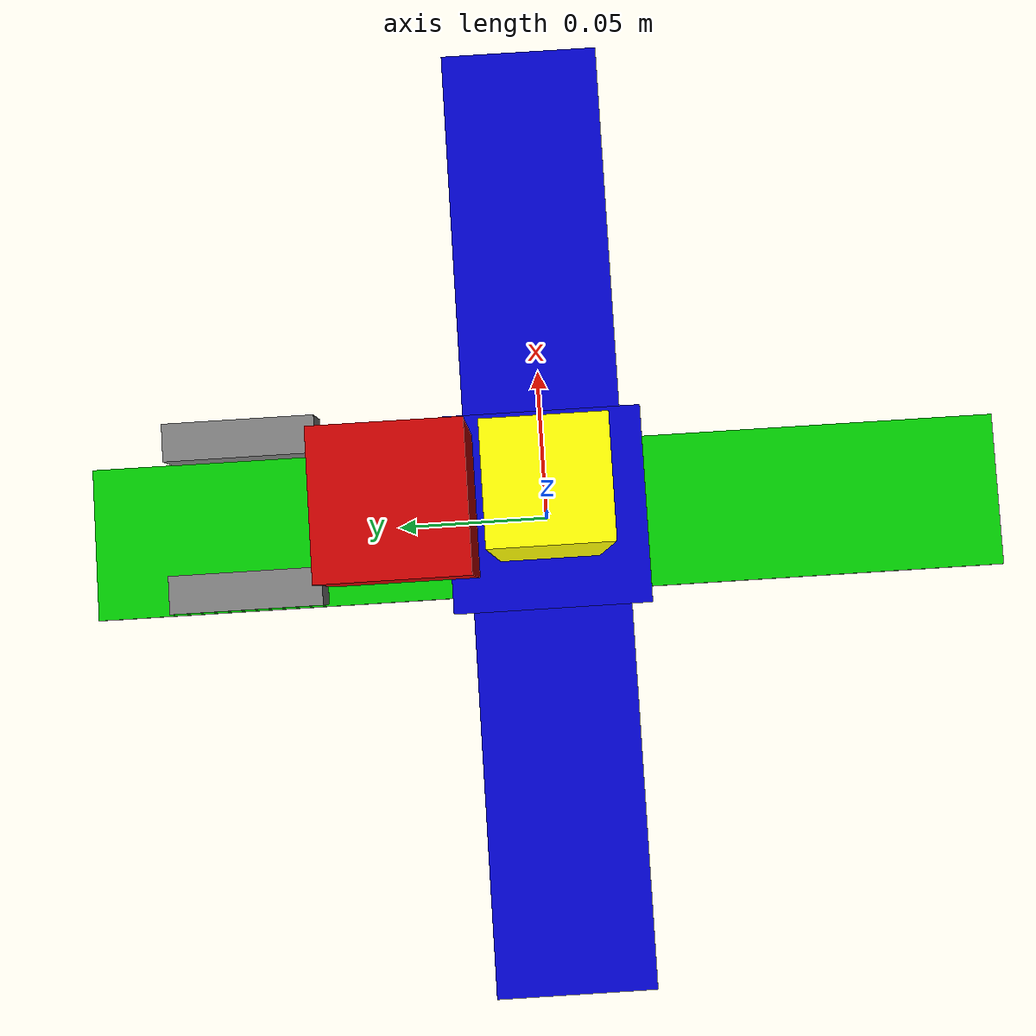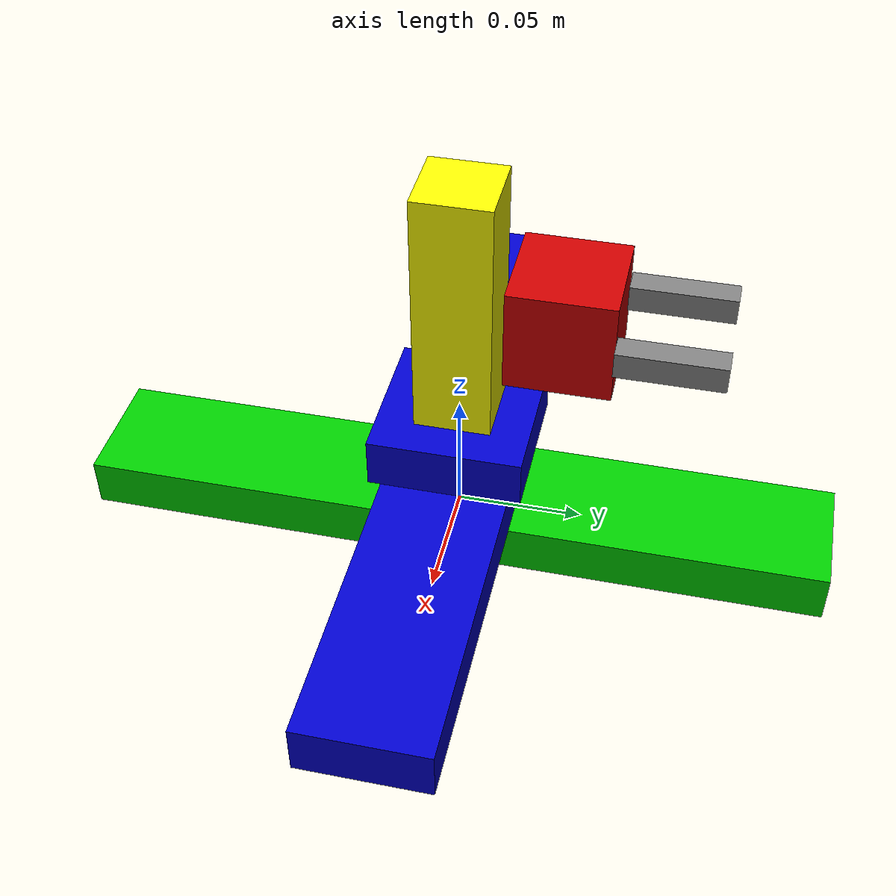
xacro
<?xml version="1.0"?>
<robot xmlns:xacro="http://www.ros.org/wiki/xacro" name="kim_kardashian">

  <material name="grey"><color rgba="0.5 0.5 0.5 1"/></material>
  <material name="blue"><color rgba="0 0 0.8 1"/></material>
  <material name="red"><color rgba="0.8 0 0 1"/></material>
  <material name="yellow"><color rgba="1 1 0 1"/></material>
  <material name="green"><color rgba="0 0.8 0 1"/></material>

  <link name="base_link">
    <visual>
      <geometry><box size="0.05 0.3 0.02"/></geometry>
      <material name="green"/>
    </visual>
  </link>

  <link name="x_rail_assembly">
    <visual>
      <geometry><box size="0.3 0.05 0.02"/></geometry>
      <material name="blue"/>
    </visual>
  </link>

  <joint name="y_axis_joint" type="prismatic">
    <parent link="base_link"/>
    <child link="x_rail_assembly"/>
    <origin xyz="0 0 0.02" rpy="0 0 0"/>
    <axis xyz="0 1 0"/>
    <limit lower="-0.12" upper="0.12" effort="100" velocity="1.0"/>
  </joint>

  <link name="x_slider">
    <visual>
      <geometry><box size="0.06 0.06 0.02"/></geometry>
      <material name="blue"/>
    </visual>
  </link>

  <joint name="x_axis_joint" type="prismatic">
    <parent link="x_rail_assembly"/>
    <child link="x_slider"/>
    <origin xyz="0 0 0.02" rpy="0 0 0"/>
    <axis xyz="1 0 0"/>
    <limit lower="-0.12" upper="0.12" effort="100" velocity="1.0"/>
  </joint>

  <link name="vertical_arm">
    <visual>
      <origin xyz="0 0 0.05" rpy="0 0 0"/>
      <geometry><box size="0.03 0.03 0.1"/></geometry>
      <material name="yellow"/>
    </visual>
  </link>

  <joint name="arm_to_x_joint" type="fixed">
    <parent link="x_slider"/>
    <child link="vertical_arm"/>
    <origin xyz="0 0 0.01" rpy="0 0 0"/>
  </joint>

  <link name="gripper_body">
    <visual>
      <geometry><box size="0.04 0.04 0.04"/></geometry>
      <material name="red"/>
    </visual>
  </link>

  <joint name="z_axis_lift_joint" type="prismatic">
    <parent link="vertical_arm"/>
    <child link="gripper_body"/>
    <origin xyz="0 0.04 0.05" rpy="0 0 0"/>
    <axis xyz="0 0 1"/>
    <limit lower="-0.04" upper="0.04" effort="100" velocity="1.0"/>
  </joint>

  <link name="finger_left">
    <visual>
      <geometry><box size="0.01 0.04 0.01"/></geometry>
      <material name="grey"/>
    </visual>
  </link>

  <joint name="finger_joint_left" type="prismatic">
    <parent link="gripper_body"/>
    <child link="finger_left"/>
    <origin xyz="-0.02 0.04 0" rpy="0 0 0"/>
    <axis xyz="1 0 0"/>
    <limit lower="-0.01" upper="0.01" effort="10" velocity="1.0"/>
  </joint>

  <link name="finger_right">
    <visual>
      <geometry><box size="0.01 0.04 0.01"/></geometry>
      <material name="grey"/>
    </visual>
  </link>

  <joint name="finger_joint_right" type="prismatic">
    <parent link="gripper_body"/>
    <child link="finger_right"/>
    <origin xyz="0.02 0.04 0" rpy="0 0 0"/>
    <axis xyz="1 0 0"/>
    <limit lower="-0.01" upper="0.01" effort="10" velocity="1.0"/>
    <mimic joint="finger_joint_left" multiplier="-1.0"/>
  </joint>

</robot>
